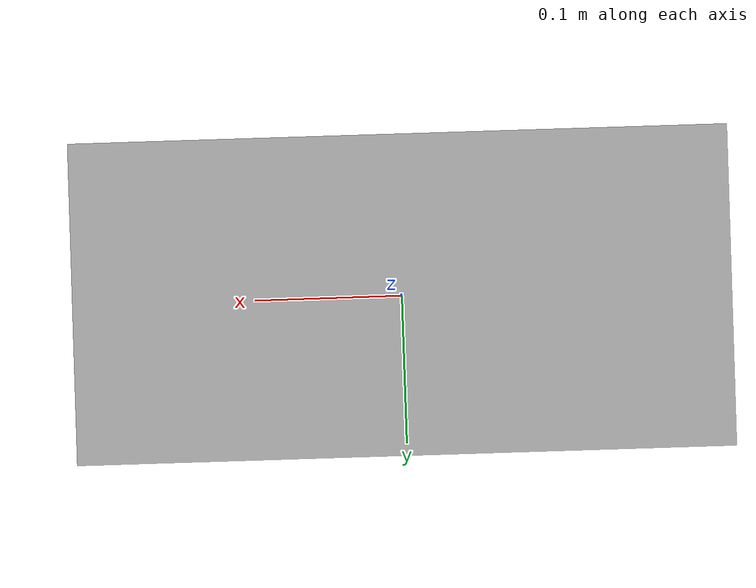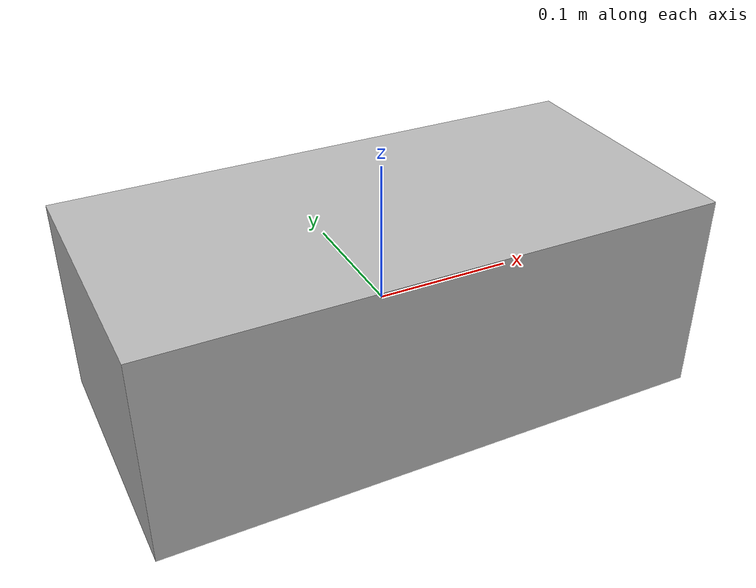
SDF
<?xml version="1.0"?>
<sdf version="1.7">
  <model name="cinder_block_2">
    <link name="link">
      <inertial>
        <pose>0 0 0.07 0 0 0</pose>
        <!-- volume about 0.0085 m^3, density 2000 kg/m^3 -->
        <mass>5</mass>
        <!-- approximate as uniform box 0.37 x 0.17 x 0.20 m -->
        <inertia>
          <ixx>0.06908</ixx>
          <ixy>0.0000</ixy>
          <iyy>0.028705</iyy>
          <ixz>0.0000</ixz>
          <iyz>0.0000</iyz>
          <izz>0.073708</izz>
        </inertia>
      </inertial>
      <visual name="visual">
        <geometry>
          <box>
            <size>0.396875 0.19368008 0.146</size>
          </box>
        </geometry>
      </visual>
      <collision name="collision_box">
        <pose>0 0 0 0 0 0</pose>
        <geometry>
          <box>
            <size>0.396875 0.19368008 0.146</size>
          </box>
        </geometry>
        <surface>
          <contact>
            <ode>
              <max_vel>0.1</max_vel>
              <min_depth>0.001</min_depth>
            </ode>
          </contact>
          <friction>
            <ode>
              <mu>1.0</mu>
              <mu2>1.0</mu2>
            </ode>
          </friction>
        </surface>
      </collision>
    </link>
  </model>
</sdf>
